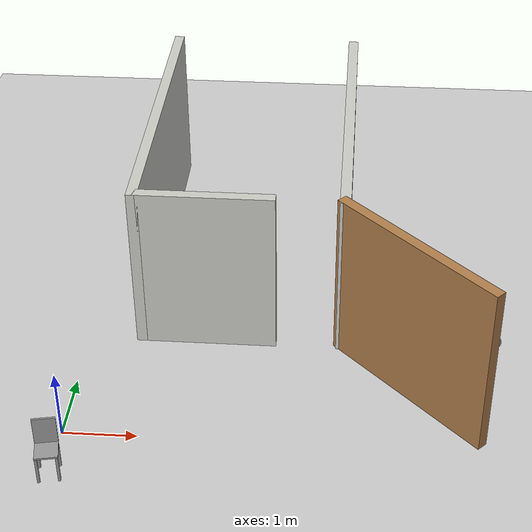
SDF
<sdf version="1.6">
 <world name="default">
  <model name="ground_plane">
   <static>1</static>
   <link name="link">
    <collision name="collision">
     <geometry><plane><normal>0 0 1</normal><size>100 100</size></plane></geometry>
     <surface><friction><ode><mu>100</mu><mu2>50</mu2></ode></friction></surface>
    </collision>
    <visual name="visual">
     <cast_shadows>0</cast_shadows>
     <geometry><plane><normal>0 0 1</normal><size>100 100</size></plane></geometry>
     <material>
      <script><uri>file://media/materials/scripts/gazebo.material</uri><name>Gazebo/Grey</name></script>
     </material>
    </visual>
   </link>
  </model>
  <model name="myHouse">
   <link name="Wall_23">
    <pose>4.22175 -2.33234 0 0 0 -1.5708</pose>
    <visual name="Wall_23_Visual">
     <pose>0 0 1.25 0 -0 0</pose>
     <geometry><box><size>4.75 0.15 2.5</size></box></geometry>
     <material>
      <script><uri>file://media/materials/scripts/gazebo.material</uri><name>Gazebo/CeilingTiled</name></script>
      <ambient>0.921569 0.807843 0.615686 1</ambient>
      <diffuse>1 1 1 1</diffuse>
      <specular>0 0 0 1</specular>
      <emissive>0 0 0 1</emissive>
     </material>
     <meta><layer>0</layer></meta>
    </visual>
    <collision name="Wall_23_Collision">
     <pose>0 0 1.25 0 -0 0</pose>
     <geometry><box><size>4.75 0.15 2.5</size></box></geometry>
     <surface>
      <friction>
       <ode><mu>1</mu><mu2>1</mu2><fdir1>0 0 0</fdir1><slip1>0</slip1><slip2>0</slip2></ode>
       <torsional>
        <coefficient>1</coefficient>
        <patch_radius>0</patch_radius>
        <surface_radius>0</surface_radius>
        <use_patch_radius>1</use_patch_radius>
        <ode><slip>0</slip></ode>
       </torsional>
      </friction>
      <bounce><restitution_coefficient>0</restitution_coefficient><threshold>1e+06</threshold></bounce>
      <contact>
       <collide_without_contact>0</collide_without_contact>
       <collide_without_contact_bitmask>1</collide_without_contact_bitmask>
       <collide_bitmask>1</collide_bitmask>
       <ode>
        <soft_cfm>0</soft_cfm>
        <soft_erp>0.2</soft_erp>
        <kp>1e+13</kp>
        <kd>1</kd>
        <max_vel>0.01</max_vel>
        <min_depth>0</min_depth>
       </ode>
       <bullet>
        <split_impulse>1</split_impulse>
        <split_impulse_penetration_threshold>-0.01</split_impulse_penetration_threshold>
        <soft_cfm>0</soft_cfm>
        <soft_erp>0.2</soft_erp>
        <kp>1e+13</kp>
        <kd>1</kd>
       </bullet>
      </contact>
     </surface>
    </collision>
   </link>
   <link name="Wall_3">
    <pose>7.99098 -5.55157 0 0 -0 2.35619</pose>
    <visual name="Wall_3_Visual">
     <pose>0 0 1.25 0 -0 0</pose>
     <geometry><box><size>2.75 0.15 2.5</size></box></geometry>
     <material>
      <script><uri>file://media/materials/scripts/gazebo.material</uri><name>Gazebo/Wood</name></script>
      <ambient>1 1 1 1</ambient>
      <diffuse>1 1 1 1</diffuse>
      <specular>0.2 0.2 0.2 1</specular>
      <emissive>0 0 0 1</emissive>
     </material>
     <meta><layer>0</layer></meta>
    </visual>
    <collision name="Wall_3_Collision">
     <pose>0 0 1.25 0 -0 0</pose>
     <geometry><box><size>2.75 0.15 2.5</size></box></geometry>
     <surface>
      <friction>
       <ode><mu>1</mu><mu2>1</mu2><fdir1>0 0 0</fdir1><slip1>0</slip1><slip2>0</slip2></ode>
       <torsional>
        <coefficient>1</coefficient>
        <patch_radius>0</patch_radius>
        <surface_radius>0</surface_radius>
        <use_patch_radius>1</use_patch_radius>
        <ode><slip>0</slip></ode>
       </torsional>
      </friction>
      <bounce><restitution_coefficient>0</restitution_coefficient><threshold>1e+06</threshold></bounce>
      <contact>
       <collide_without_contact>0</collide_without_contact>
       <collide_without_contact_bitmask>1</collide_without_contact_bitmask>
       <collide_bitmask>1</collide_bitmask>
       <ode>
        <soft_cfm>0</soft_cfm>
        <soft_erp>0.2</soft_erp>
        <kp>1e+13</kp>
        <kd>1</kd>
        <max_vel>0.01</max_vel>
        <min_depth>0</min_depth>
       </ode>
       <bullet>
        <split_impulse>1</split_impulse>
        <split_impulse_penetration_threshold>-0.01</split_impulse_penetration_threshold>
        <soft_cfm>0</soft_cfm>
        <soft_erp>0.2</soft_erp>
        <kp>1e+13</kp>
        <kd>1</kd>
       </bullet>
      </contact>
     </surface>
    </collision>
   </link>
   <link name="Wall_4">
    <pose>7.07175 -2.33234 0 0 -0 1.5708</pose>
    <visual name="Wall_4_Visual">
     <pose>0 0 1.25 0 -0 0</pose>
     <geometry><box><size>4.75 0.15 2.5</size></box></geometry>
     <material>
      <script><uri>file://media/materials/scripts/gazebo.material</uri><name>Gazebo/CeilingTiled</name></script>
      <ambient>0.921569 0.807843 0.615686 1</ambient>
      <diffuse>1 1 1 1</diffuse>
      <specular>0 0 0 1</specular>
      <emissive>0 0 0 1</emissive>
     </material>
     <meta><layer>0</layer></meta>
    </visual>
    <collision name="Wall_4_Collision">
     <pose>0 0 1.25 0 -0 0</pose>
     <geometry><box><size>4.75 0.15 2.5</size></box></geometry>
     <surface>
      <friction>
       <ode><mu>1</mu><mu2>1</mu2><fdir1>0 0 0</fdir1><slip1>0</slip1><slip2>0</slip2></ode>
       <torsional>
        <coefficient>1</coefficient>
        <patch_radius>0</patch_radius>
        <surface_radius>0</surface_radius>
        <use_patch_radius>1</use_patch_radius>
        <ode><slip>0</slip></ode>
       </torsional>
      </friction>
      <bounce><restitution_coefficient>0</restitution_coefficient><threshold>1e+06</threshold></bounce>
      <contact>
       <collide_without_contact>0</collide_without_contact>
       <collide_without_contact_bitmask>1</collide_without_contact_bitmask>
       <collide_bitmask>1</collide_bitmask>
       <ode>
        <soft_cfm>0</soft_cfm>
        <soft_erp>0.2</soft_erp>
        <kp>1e+13</kp>
        <kd>1</kd>
        <max_vel>0.01</max_vel>
        <min_depth>0</min_depth>
       </ode>
       <bullet>
        <split_impulse>1</split_impulse>
        <split_impulse_penetration_threshold>-0.01</split_impulse_penetration_threshold>
        <soft_cfm>0</soft_cfm>
        <soft_erp>0.2</soft_erp>
        <kp>1e+13</kp>
        <kd>1</kd>
       </bullet>
      </contact>
     </surface>
    </collision>
   </link>
   <link name="Wall_54">
    <pose>5.14675 -4.63234 0 0 -0 0</pose>
    <visual name="Wall_54_Visual">
     <pose>0 0 1.25 0 -0 0</pose>
     <geometry><box><size>2 0.15 2.5</size></box></geometry>
     <material>
      <script><uri>file://media/materials/scripts/gazebo.material</uri><name>Gazebo/CeilingTiled</name></script>
      <ambient>0.921569 0.807843 0.615686 1</ambient>
      <diffuse>1 1 1 1</diffuse>
      <specular>0 0 0 1</specular>
      <emissive>0 0 0 1</emissive>
     </material>
     <meta><layer>0</layer></meta>
    </visual>
    <collision name="Wall_54_Collision">
     <pose>0 0 1.25 0 -0 0</pose>
     <geometry><box><size>2 0.15 2.5</size></box></geometry>
     <surface>
      <friction>
       <ode><mu>1</mu><mu2>1</mu2><fdir1>0 0 0</fdir1><slip1>0</slip1><slip2>0</slip2></ode>
       <torsional>
        <coefficient>1</coefficient>
        <patch_radius>0</patch_radius>
        <surface_radius>0</surface_radius>
        <use_patch_radius>1</use_patch_radius>
        <ode><slip>0</slip></ode>
       </torsional>
      </friction>
      <bounce><restitution_coefficient>0</restitution_coefficient><threshold>1e+06</threshold></bounce>
      <contact>
       <collide_without_contact>0</collide_without_contact>
       <collide_without_contact_bitmask>1</collide_without_contact_bitmask>
       <collide_bitmask>1</collide_bitmask>
       <ode>
        <soft_cfm>0</soft_cfm>
        <soft_erp>0.2</soft_erp>
        <kp>1e+13</kp>
        <kd>1</kd>
        <max_vel>0.01</max_vel>
        <min_depth>0</min_depth>
       </ode>
       <bullet>
        <split_impulse>1</split_impulse>
        <split_impulse_penetration_threshold>-0.01</split_impulse_penetration_threshold>
        <soft_cfm>0</soft_cfm>
        <soft_erp>0.2</soft_erp>
        <kp>1e+13</kp>
        <kd>1</kd>
       </bullet>
      </contact>
     </surface>
    </collision>
   </link>
   <static>1</static>
   <pose>-3.47025 6.64899 0 0 -0 0</pose>
  </model>
  <model name="myChair_clone_clone_0_clone_0">
   <link name="link_0">
    <pose>0.022917 -0 0.0914 0 -0 0</pose>
    <inertial>
     <mass>1</mass>
     <inertia>
      <ixx>0.166667</ixx>
      <ixy>0</ixy>
      <ixz>0</ixz>
      <iyy>0.166667</iyy>
      <iyz>0</iyz>
      <izz>0.166667</izz>
     </inertia>
    </inertial>
    <visual name="visual">
     <geometry><box><size>0.3 0.3 0.025</size></box></geometry>
     <material>
      <lighting>1</lighting>
      <script><uri>file://media/materials/scripts/gazebo.material</uri><name>Gazebo/Grey</name></script>
      <ambient>0.3 0.3 0.3 1</ambient>
      <diffuse>0.7 0.7 0.7 1</diffuse>
      <specular>0.01 0.01 0.01 1</specular>
      <emissive>0 0 0 1</emissive>
      <shader type="vertex"><normal_map>__default__</normal_map></shader>
     </material>
    </visual>
    <collision name="collision">
     <geometry><box><size>0.3 0.3 0.025</size></box></geometry>
     <surface>
      <friction>
       <ode><mu>1</mu><mu2>1</mu2><fdir1>0 0 0</fdir1><slip1>0</slip1><slip2>0</slip2></ode>
       <torsional>
        <coefficient>1</coefficient>
        <patch_radius>0</patch_radius>
        <surface_radius>0</surface_radius>
        <use_patch_radius>1</use_patch_radius>
        <ode><slip>0</slip></ode>
       </torsional>
      </friction>
      <bounce><restitution_coefficient>0</restitution_coefficient><threshold>1e+06</threshold></bounce>
      <contact>
       <collide_without_contact>0</collide_without_contact>
       <collide_without_contact_bitmask>1</collide_without_contact_bitmask>
       <collide_bitmask>1</collide_bitmask>
       <ode>
        <soft_cfm>0</soft_cfm>
        <soft_erp>0.2</soft_erp>
        <kp>1e+13</kp>
        <kd>1</kd>
        <max_vel>0.01</max_vel>
        <min_depth>0</min_depth>
       </ode>
       <bullet>
        <split_impulse>1</split_impulse>
        <split_impulse_penetration_threshold>-0.01</split_impulse_penetration_threshold>
        <soft_cfm>0</soft_cfm>
        <soft_erp>0.2</soft_erp>
        <kp>1e+13</kp>
        <kd>1</kd>
       </bullet>
      </contact>
     </surface>
    </collision>
   </link>
   <link name="link_1">
    <pose>-0.107083 -0.13 -0.11875 0 -0 0</pose>
    <inertial>
     <mass>1</mass>
     <inertia><ixx>0.145833</ixx><ixy>0</ixy><ixz>0</ixz><iyy>0.145833</iyy><iyz>0</iyz><izz>0.125</izz></inertia>
    </inertial>
    <visual name="visual">
     <geometry><cylinder><radius>0.02</radius><length>0.4</length></cylinder></geometry>
     <material>
      <lighting>1</lighting>
      <script><uri>file://media/materials/scripts/gazebo.material</uri><name>Gazebo/Grey</name></script>
      <ambient>0.3 0.3 0.3 1</ambient>
      <diffuse>0.7 0.7 0.7 1</diffuse>
      <specular>0.01 0.01 0.01 1</specular>
      <emissive>0 0 0 1</emissive>
      <shader type="vertex"><normal_map>__default__</normal_map></shader>
     </material>
    </visual>
    <collision name="collision">
     <geometry><cylinder><radius>0.02</radius><length>0.4</length></cylinder></geometry>
     <surface>
      <friction>
       <ode><mu>1</mu><mu2>1</mu2><fdir1>0 0 0</fdir1><slip1>0</slip1><slip2>0</slip2></ode>
       <torsional>
        <coefficient>1</coefficient>
        <patch_radius>0</patch_radius>
        <surface_radius>0</surface_radius>
        <use_patch_radius>1</use_patch_radius>
        <ode><slip>0</slip></ode>
       </torsional>
      </friction>
      <bounce><restitution_coefficient>0</restitution_coefficient><threshold>1e+06</threshold></bounce>
      <contact>
       <collide_without_contact>0</collide_without_contact>
       <collide_without_contact_bitmask>1</collide_without_contact_bitmask>
       <collide_bitmask>1</collide_bitmask>
       <ode>
        <soft_cfm>0</soft_cfm>
        <soft_erp>0.2</soft_erp>
        <kp>1e+13</kp>
        <kd>1</kd>
        <max_vel>0.01</max_vel>
        <min_depth>0</min_depth>
       </ode>
       <bullet>
        <split_impulse>1</split_impulse>
        <split_impulse_penetration_threshold>-0.01</split_impulse_penetration_threshold>
        <soft_cfm>0</soft_cfm>
        <soft_erp>0.2</soft_erp>
        <kp>1e+13</kp>
        <kd>1</kd>
       </bullet>
      </contact>
     </surface>
    </collision>
   </link>
   <link name="link_1_clone">
    <pose>-0.107083 0.13 -0.11875 0 -0 0</pose>
    <inertial>
     <mass>1</mass>
     <inertia><ixx>0.145833</ixx><ixy>0</ixy><ixz>0</ixz><iyy>0.145833</iyy><iyz>0</iyz><izz>0.125</izz></inertia>
    </inertial>
    <visual name="visual">
     <geometry><cylinder><radius>0.02</radius><length>0.4</length></cylinder></geometry>
     <material>
      <lighting>1</lighting>
      <script><uri>file://media/materials/scripts/gazebo.material</uri><name>Gazebo/Grey</name></script>
      <ambient>0.3 0.3 0.3 1</ambient>
      <diffuse>0.7 0.7 0.7 1</diffuse>
      <specular>0.01 0.01 0.01 1</specular>
      <emissive>0 0 0 1</emissive>
      <shader type="vertex"><normal_map>__default__</normal_map></shader>
     </material>
    </visual>
    <collision name="collision">
     <geometry><cylinder><radius>0.02</radius><length>0.4</length></cylinder></geometry>
     <surface>
      <friction>
       <ode><mu>1</mu><mu2>1</mu2><fdir1>0 0 0</fdir1><slip1>0</slip1><slip2>0</slip2></ode>
       <torsional>
        <coefficient>1</coefficient>
        <patch_radius>0</patch_radius>
        <surface_radius>0</surface_radius>
        <use_patch_radius>1</use_patch_radius>
        <ode><slip>0</slip></ode>
       </torsional>
      </friction>
      <bounce><restitution_coefficient>0</restitution_coefficient><threshold>1e+06</threshold></bounce>
      <contact>
       <collide_without_contact>0</collide_without_contact>
       <collide_without_contact_bitmask>1</collide_without_contact_bitmask>
       <collide_bitmask>1</collide_bitmask>
       <ode>
        <soft_cfm>0</soft_cfm>
        <soft_erp>0.2</soft_erp>
        <kp>1e+13</kp>
        <kd>1</kd>
        <max_vel>0.01</max_vel>
        <min_depth>0</min_depth>
       </ode>
       <bullet>
        <split_impulse>1</split_impulse>
        <split_impulse_penetration_threshold>-0.01</split_impulse_penetration_threshold>
        <soft_cfm>0</soft_cfm>
        <soft_erp>0.2</soft_erp>
        <kp>1e+13</kp>
        <kd>1</kd>
       </bullet>
      </contact>
     </surface>
    </collision>
   </link>
   <link name="link_1_clone_0">
    <pose>0.152917 -0.13 -0.11875 0 -0 0</pose>
    <inertial>
     <mass>1</mass>
     <inertia><ixx>0.145833</ixx><ixy>0</ixy><ixz>0</ixz><iyy>0.145833</iyy><iyz>0</iyz><izz>0.125</izz></inertia>
    </inertial>
    <visual name="visual">
     <geometry><cylinder><radius>0.02</radius><length>0.4</length></cylinder></geometry>
     <material>
      <lighting>1</lighting>
      <script><uri>file://media/materials/scripts/gazebo.material</uri><name>Gazebo/Grey</name></script>
      <ambient>0.3 0.3 0.3 1</ambient>
      <diffuse>0.7 0.7 0.7 1</diffuse>
      <specular>0.01 0.01 0.01 1</specular>
      <emissive>0 0 0 1</emissive>
      <shader type="vertex"><normal_map>__default__</normal_map></shader>
     </material>
    </visual>
    <collision name="collision">
     <geometry><cylinder><radius>0.02</radius><length>0.4</length></cylinder></geometry>
     <surface>
      <friction>
       <ode><mu>1</mu><mu2>1</mu2><fdir1>0 0 0</fdir1><slip1>0</slip1><slip2>0</slip2></ode>
       <torsional>
        <coefficient>1</coefficient>
        <patch_radius>0</patch_radius>
        <surface_radius>0</surface_radius>
        <use_patch_radius>1</use_patch_radius>
        <ode><slip>0</slip></ode>
       </torsional>
      </friction>
      <bounce><restitution_coefficient>0</restitution_coefficient><threshold>1e+06</threshold></bounce>
      <contact>
       <collide_without_contact>0</collide_without_contact>
       <collide_without_contact_bitmask>1</collide_without_contact_bitmask>
       <collide_bitmask>1</collide_bitmask>
       <ode>
        <soft_cfm>0</soft_cfm>
        <soft_erp>0.2</soft_erp>
        <kp>1e+13</kp>
        <kd>1</kd>
        <max_vel>0.01</max_vel>
        <min_depth>0</min_depth>
       </ode>
       <bullet>
        <split_impulse>1</split_impulse>
        <split_impulse_penetration_threshold>-0.01</split_impulse_penetration_threshold>
        <soft_cfm>0</soft_cfm>
        <soft_erp>0.2</soft_erp>
        <kp>1e+13</kp>
        <kd>1</kd>
       </bullet>
      </contact>
     </surface>
    </collision>
   </link>
   <link name="link_1_clone_1">
    <pose>0.152917 0.13 -0.11875 0 -0 0</pose>
    <inertial>
     <mass>1</mass>
     <inertia><ixx>0.145833</ixx><ixy>0</ixy><ixz>0</ixz><iyy>0.145833</iyy><iyz>0</iyz><izz>0.125</izz></inertia>
    </inertial>
    <visual name="visual">
     <geometry><cylinder><radius>0.02</radius><length>0.4</length></cylinder></geometry>
     <material>
      <lighting>1</lighting>
      <script><uri>file://media/materials/scripts/gazebo.material</uri><name>Gazebo/Grey</name></script>
      <ambient>0.3 0.3 0.3 1</ambient>
      <diffuse>0.7 0.7 0.7 1</diffuse>
      <specular>0.01 0.01 0.01 1</specular>
      <emissive>0 0 0 1</emissive>
      <shader type="vertex"><normal_map>__default__</normal_map></shader>
     </material>
    </visual>
    <collision name="collision">
     <geometry><cylinder><radius>0.02</radius><length>0.4</length></cylinder></geometry>
     <surface>
      <friction>
       <ode><mu>1</mu><mu2>1</mu2><fdir1>0 0 0</fdir1><slip1>0</slip1><slip2>0</slip2></ode>
       <torsional>
        <coefficient>1</coefficient>
        <patch_radius>0</patch_radius>
        <surface_radius>0</surface_radius>
        <use_patch_radius>1</use_patch_radius>
        <ode><slip>0</slip></ode>
       </torsional>
      </friction>
      <bounce><restitution_coefficient>0</restitution_coefficient><threshold>1e+06</threshold></bounce>
      <contact>
       <collide_without_contact>0</collide_without_contact>
       <collide_without_contact_bitmask>1</collide_without_contact_bitmask>
       <collide_bitmask>1</collide_bitmask>
       <ode>
        <soft_cfm>0</soft_cfm>
        <soft_erp>0.2</soft_erp>
        <kp>1e+13</kp>
        <kd>1</kd>
        <max_vel>0.01</max_vel>
        <min_depth>0</min_depth>
       </ode>
       <bullet>
        <split_impulse>1</split_impulse>
        <split_impulse_penetration_threshold>-0.01</split_impulse_penetration_threshold>
        <soft_cfm>0</soft_cfm>
        <soft_erp>0.2</soft_erp>
        <kp>1e+13</kp>
        <kd>1</kd>
       </bullet>
      </contact>
     </surface>
    </collision>
   </link>
   <link name="link_2">
    <pose>-0.114583 0 0.303495 0 -0 0</pose>
    <inertial>
     <mass>1</mass>
     <inertia>
      <ixx>0.166667</ixx>
      <ixy>0</ixy>
      <ixz>0</ixz>
      <iyy>0.166667</iyy>
      <iyz>0</iyz>
      <izz>0.166667</izz>
     </inertia>
    </inertial>
    <visual name="visual">
     <geometry><box><size>0.025 0.3 0.4</size></box></geometry>
     <material>
      <lighting>1</lighting>
      <script><uri>file://media/materials/scripts/gazebo.material</uri><name>Gazebo/Grey</name></script>
      <ambient>0.3 0.3 0.3 1</ambient>
      <diffuse>0.7 0.7 0.7 1</diffuse>
      <specular>0.01 0.01 0.01 1</specular>
      <emissive>0 0 0 1</emissive>
      <shader type="vertex"><normal_map>__default__</normal_map></shader>
     </material>
    </visual>
    <collision name="collision">
     <geometry><box><size>0.025 0.3 0.4</size></box></geometry>
     <surface>
      <friction>
       <ode><mu>1</mu><mu2>1</mu2><fdir1>0 0 0</fdir1><slip1>0</slip1><slip2>0</slip2></ode>
       <torsional>
        <coefficient>1</coefficient>
        <patch_radius>0</patch_radius>
        <surface_radius>0</surface_radius>
        <use_patch_radius>1</use_patch_radius>
        <ode><slip>0</slip></ode>
       </torsional>
      </friction>
      <bounce><restitution_coefficient>0</restitution_coefficient><threshold>1e+06</threshold></bounce>
      <contact>
       <collide_without_contact>0</collide_without_contact>
       <collide_without_contact_bitmask>1</collide_without_contact_bitmask>
       <collide_bitmask>1</collide_bitmask>
       <ode>
        <soft_cfm>0</soft_cfm>
        <soft_erp>0.2</soft_erp>
        <kp>1e+13</kp>
        <kd>1</kd>
        <max_vel>0.01</max_vel>
        <min_depth>0</min_depth>
       </ode>
       <bullet>
        <split_impulse>1</split_impulse>
        <split_impulse_penetration_threshold>-0.01</split_impulse_penetration_threshold>
        <soft_cfm>0</soft_cfm>
        <soft_erp>0.2</soft_erp>
        <kp>1e+13</kp>
        <kd>1</kd>
       </bullet>
      </contact>
     </surface>
    </collision>
   </link>
   <joint name="link_0_JOINT_0" type="fixed">
    <parent>link_0</parent>
    <child>link_1</child>
    <physics>
     <ode><limit><cfm>0</cfm><erp>0.2</erp></limit><suspension><cfm>0</cfm><erp>0.2</erp></suspension></ode>
    </physics>
   </joint>
   <joint name="link_0_JOINT_1" type="fixed">
    <parent>link_0</parent>
    <child>link_1_clone</child>
    <physics>
     <ode><limit><cfm>0</cfm><erp>0.2</erp></limit><suspension><cfm>0</cfm><erp>0.2</erp></suspension></ode>
    </physics>
   </joint>
   <joint name="link_0_JOINT_2" type="fixed">
    <parent>link_0</parent>
    <child>link_1_clone_0</child>
    <physics>
     <ode><limit><cfm>0</cfm><erp>0.2</erp></limit><suspension><cfm>0</cfm><erp>0.2</erp></suspension></ode>
    </physics>
   </joint>
   <joint name="link_0_JOINT_3" type="fixed">
    <parent>link_0</parent>
    <child>link_1_clone_1</child>
    <physics>
     <ode><limit><cfm>0</cfm><erp>0.2</erp></limit><suspension><cfm>0</cfm><erp>0.2</erp></suspension></ode>
    </physics>
   </joint>
   <joint name="link_0_JOINT_5" type="revolute">
    <parent>link_0</parent>
    <child>link_2</child>
    <axis>
     <xyz>1 0 0</xyz>
     <use_parent_model_frame>0</use_parent_model_frame>
     <limit>
      <lower>-1.79769e+308</lower>
      <upper>1.79769e+308</upper>
      <effort>-1</effort>
      <velocity>-1</velocity>
     </limit>
     <dynamics>
      <spring_reference>0</spring_reference>
      <spring_stiffness>0</spring_stiffness>
      <damping>0</damping>
      <friction>0</friction>
     </dynamics>
    </axis>
    <physics>
     <ode><limit><cfm>0</cfm><erp>0.2</erp></limit><suspension><cfm>0</cfm><erp>0.2</erp></suspension></ode>
    </physics>
   </joint>
   <static>0</static>
   <pose>-0.002006 -0.701494 0.318749 2e-06 -3e-06 -1.38017</pose>
  </model>
  <model name="my_ball">
   <link name="link_0">
    <inertial>
     <mass>1</mass>
     <inertia><ixx>0.1</ixx><ixy>0</ixy><ixz>0</ixz><iyy>0.1</iyy><iyz>0</iyz><izz>0.1</izz></inertia>
    </inertial>
    <visual name="visual">
     <geometry><sphere><radius>0.1</radius></sphere></geometry>
     <material>
      <lighting>1</lighting>
      <script><uri>file://media/materials/scripts/gazebo.material</uri><name>Gazebo/Grey</name></script>
      <ambient>1 1 1 1</ambient>
      <diffuse>1 1 1 1</diffuse>
      <specular>1 1 1 1</specular>
      <emissive>1 1 1 1</emissive>
      <shader type="vertex"><normal_map>__default__</normal_map></shader>
     </material>
    </visual>
    <collision name="collision">
     <geometry><sphere><radius>0.1</radius></sphere></geometry>
     <surface>
      <friction>
       <ode><mu>1</mu><mu2>1</mu2><fdir1>0 0 0</fdir1><slip1>0</slip1><slip2>0</slip2></ode>
       <torsional>
        <coefficient>1</coefficient>
        <patch_radius>0</patch_radius>
        <surface_radius>0</surface_radius>
        <use_patch_radius>1</use_patch_radius>
        <ode><slip>0</slip></ode>
       </torsional>
      </friction>
      <bounce><restitution_coefficient>0</restitution_coefficient><threshold>1e+06</threshold></bounce>
      <contact>
       <collide_without_contact>0</collide_without_contact>
       <collide_without_contact_bitmask>1</collide_without_contact_bitmask>
       <collide_bitmask>1</collide_bitmask>
       <ode>
        <soft_cfm>0</soft_cfm>
        <soft_erp>0.2</soft_erp>
        <kp>1e+13</kp>
        <kd>1</kd>
        <max_vel>0.01</max_vel>
        <min_depth>0</min_depth>
       </ode>
       <bullet>
        <split_impulse>1</split_impulse>
        <split_impulse_penetration_threshold>-0.01</split_impulse_penetration_threshold>
        <soft_cfm>0</soft_cfm>
        <soft_erp>0.2</soft_erp>
        <kp>1e+13</kp>
        <kd>1</kd>
       </bullet>
      </contact>
     </surface>
    </collision>
   </link>
   <static>0</static>
   <pose>5.78232 2.13237 0.1 0 -0 0</pose>
  </model>
 </world>
</sdf>
